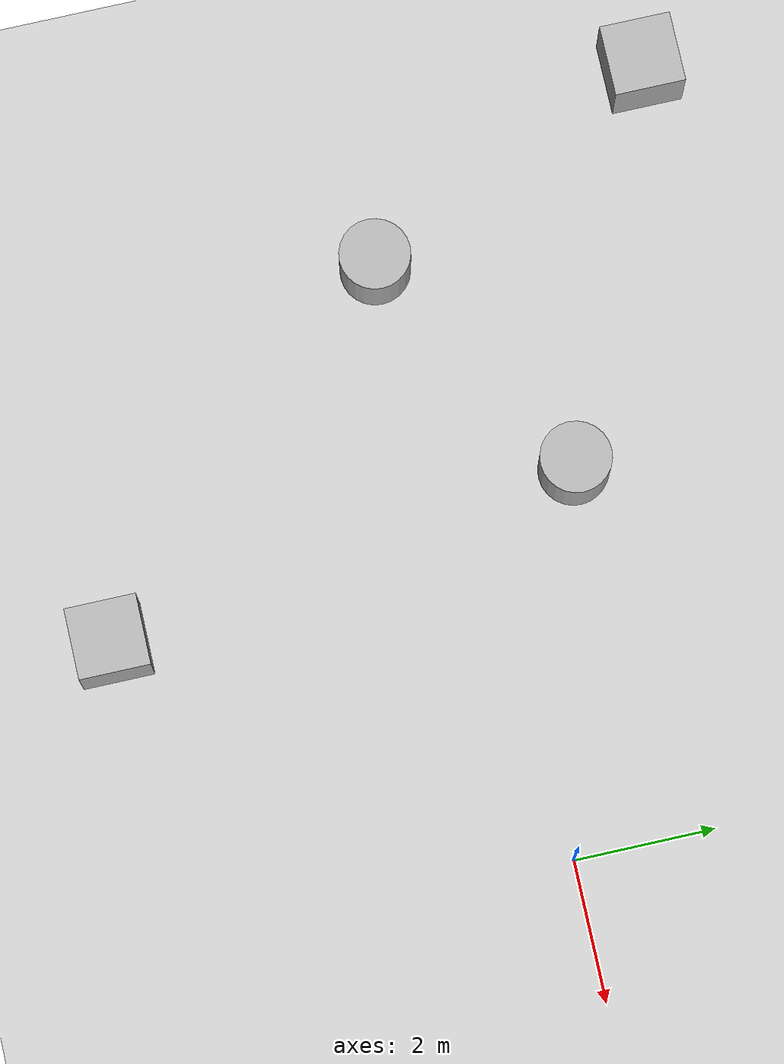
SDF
<sdf version="1.7">
 <world name="simple_world">
  <model name="ground_plane">
   <static>1</static>
   <link name="link">
    <collision name="collision">
     <geometry><plane><normal>0 0 1</normal><size>100 100</size></plane></geometry>
     <surface><friction><ode><mu>100</mu><mu2>50</mu2></ode></friction></surface>
    </collision>
    <visual name="visual">
     <cast_shadows>0</cast_shadows>
     <geometry><plane><normal>0 0 1</normal><size>100 100</size></plane></geometry>
     <material>
      <ambient>0.8 0.8 0.8 1</ambient>
      <diffuse>0.8 0.8 0.8 1</diffuse>
      <specular>0.8 0.8 0.8 1</specular>
     </material>
    </visual>
   </link>
  </model>
  <model name="unit_box">
   <pose>-10.6452 3.41752 0.499995 -1e-05 0 -0.000218</pose>
   <link name="link">
    <inertial>
     <mass>1</mass>
     <inertia>
      <ixx>0.166667</ixx>
      <ixy>0</ixy>
      <ixz>0</ixz>
      <iyy>0.166667</iyy>
      <iyz>0</iyz>
      <izz>0.166667</izz>
     </inertia>
    </inertial>
    <collision name="collision"><geometry><box><size>1 1 1</size></box></geometry></collision>
    <visual name="visual">
     <geometry><box><size>1 1 1</size></box></geometry>
     <material>
      <ambient>.3 .3 .3  1.0</ambient>
      <diffuse>.7 .7 .7  1.0</diffuse>
      <specular>0.01 0.01 0.01 1.0</specular>
     </material>
    </visual>
   </link>
  </model>
  <model name="unit_box_1">
   <pose>-4.27647 -5.54606 0.499995 -1e-05 0 -0.000225</pose>
   <link name="link">
    <inertial>
     <mass>1</mass>
     <inertia>
      <ixx>0.166667</ixx>
      <ixy>0</ixy>
      <ixz>0</ixz>
      <iyy>0.166667</iyy>
      <iyz>0</iyz>
      <izz>0.166667</izz>
     </inertia>
    </inertial>
    <collision name="collision"><geometry><box><size>1 1 1</size></box></geometry></collision>
    <visual name="visual">
     <geometry><box><size>1 1 1</size></box></geometry>
     <material>
      <ambient>.3 .3 .3  1.0</ambient>
      <diffuse>.7 .7 .7  1.0</diffuse>
      <specular>0.01 0.01 0.01 1.0</specular>
     </material>
    </visual>
   </link>
  </model>
  <model name="unit_cylinder">
   <pose>-8.67512 -0.839217 0.499993 -3e-06 2e-06 -2e-06</pose>
   <link name="link">
    <inertial>
     <mass>1</mass>
     <inertia><ixx>0.145833</ixx><ixy>0</ixy><ixz>0</ixz><iyy>0.145833</iyy><iyz>0</iyz><izz>0.125</izz></inertia>
    </inertial>
    <collision name="collision">
     <geometry><cylinder><radius>0.5</radius><length>1</length></cylinder></geometry>
    </collision>
    <visual name="visual">
     <geometry><cylinder><radius>0.5</radius><length>1</length></cylinder></geometry>
     <material>
      <ambient>.3 .3 .3  1.0</ambient>
      <diffuse>.7 .7 .7  1.0</diffuse>
      <specular>0.01 0.01 0.01 1.0</specular>
     </material>
    </visual>
   </link>
  </model>
  <model name="unit_cylinder_0_clone">
   <pose>-5.29339 1.22652 0.499993 -0 -0 -1e-06</pose>
   <link name="link">
    <inertial>
     <mass>1</mass>
     <inertia><ixx>0.145833</ixx><ixy>0</ixy><ixz>0</ixz><iyy>0.145833</iyy><iyz>0</iyz><izz>0.125</izz></inertia>
    </inertial>
    <collision name="collision">
     <geometry><cylinder><radius>0.5</radius><length>1</length></cylinder></geometry>
    </collision>
    <visual name="visual">
     <geometry><cylinder><radius>0.5</radius><length>1</length></cylinder></geometry>
     <material>
      <ambient>.3 .3 .3  1.0</ambient>
      <diffuse>.7 .7 .7  1.0</diffuse>
      <specular>0.01 0.01 0.01 1.0</specular>
     </material>
    </visual>
   </link>
  </model>
 </world>
</sdf>
